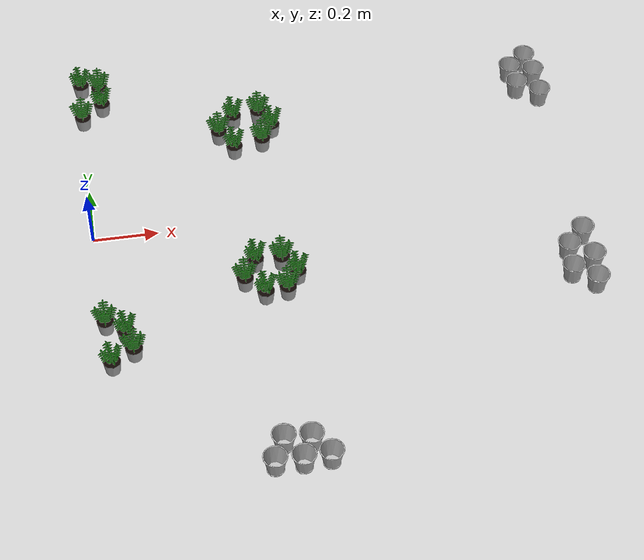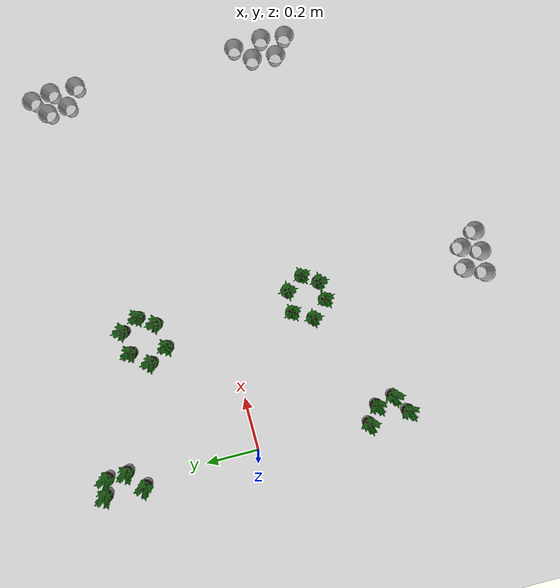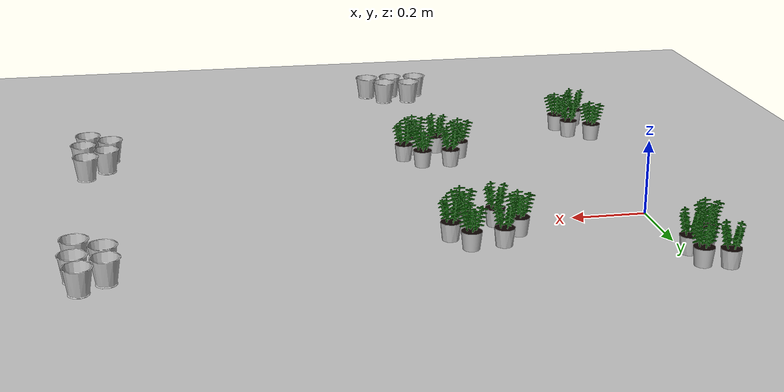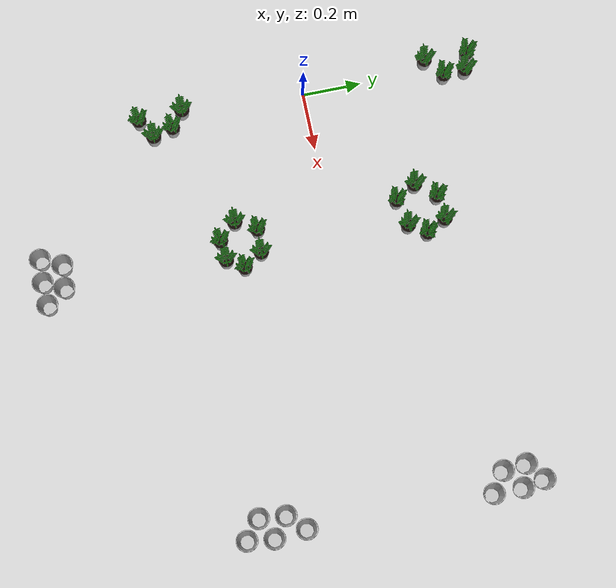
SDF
<sdf version="1.10">
 <world name="empty">
  <model name="ground_plane">
   <static>true</static>
   <link name="link">
    <collision name="collision">
     <geometry><plane><normal>0 0 1</normal><size>100 100</size></plane></geometry>
    </collision>
    <visual name="visual">
     <geometry><plane><normal>0 0 1</normal><size>100 100</size></plane></geometry>
     <material>
      <ambient>0.800000012 0.800000012 0.800000012 1</ambient>
      <diffuse>0.800000012 0.800000012 0.800000012 1</diffuse>
      <specular>0.800000012 0.800000012 0.800000012 1</specular>
     </material>
    </visual>
    <inertial>
     <mass>1</mass>
     <inertia><ixx>1</ixx><ixy>0</ixy><ixz>0</ixz><iyy>1</iyy><iyz>0</iyz><izz>1</izz></inertia>
    </inertial>
   </link>
  </model>
  <model name="pot_15">
   <link name="link">
    <pose>0 0 0.10000000000000001 0 0 0</pose>
    <collision name="collision">
     <geometry>
      <mesh>
       <uri>file:///home/arusso/dev/coupe/ws_0/install/champi_simulator/share/champi_simulator/models/pot/meshes/model.dae</uri>
      </mesh>
     </geometry>
    </collision>
    <visual name="visual">
     <geometry>
      <mesh>
       <uri>file:///home/arusso/dev/coupe/ws_0/install/champi_simulator/share/champi_simulator/models/pot/meshes/model.dae</uri>
      </mesh>
     </geometry>
    </visual>
    <inertial>
     <mass>1</mass>
     <inertia><ixx>1</ixx><ixy>0</ixy><ixz>0</ixz><iyy>1</iyy><iyz>0</iyz><izz>1</izz></inertia>
    </inertial>
   </link>
   <pose>1.4501900000000001 0.46426099999999998 -0.019989 -0.00069220900000000005 0.00014280300000000005 -4.0547600000000025e-08</pose>
   <static>false</static>
  </model>
  <model name="pot_16">
   <link name="link">
    <pose>0 0 0.10000000000000001 0 0 0</pose>
    <collision name="collision">
     <geometry>
      <mesh>
       <uri>file:///home/arusso/dev/coupe/ws_0/install/champi_simulator/share/champi_simulator/models/pot/meshes/model.dae</uri>
      </mesh>
     </geometry>
    </collision>
    <visual name="visual">
     <geometry>
      <mesh>
       <uri>file:///home/arusso/dev/coupe/ws_0/install/champi_simulator/share/champi_simulator/models/pot/meshes/model.dae</uri>
      </mesh>
     </geometry>
    </visual>
    <inertial>
     <mass>1</mass>
     <inertia><ixx>1</ixx><ixy>0</ixy><ixz>0</ixz><iyy>1</iyy><iyz>0</iyz><izz>1</izz></inertia>
    </inertial>
   </link>
   <pose>1.4631799999999999 0.39277099999999998 -0.0199889 -0.00069345600000000017 0.00014240400000000011 0.0018851600000000001</pose>
   <static>false</static>
  </model>
  <model name="pot_17">
   <link name="link">
    <pose>0 0 0.10000000000000001 0 0 0</pose>
    <collision name="collision">
     <geometry>
      <mesh>
       <uri>file:///home/arusso/dev/coupe/ws_0/install/champi_simulator/share/champi_simulator/models/pot/meshes/model.dae</uri>
      </mesh>
     </geometry>
    </collision>
    <visual name="visual">
     <geometry>
      <mesh>
       <uri>file:///home/arusso/dev/coupe/ws_0/install/champi_simulator/share/champi_simulator/models/pot/meshes/model.dae</uri>
      </mesh>
     </geometry>
    </visual>
    <inertial>
     <mass>1</mass>
     <inertia><ixx>1</ixx><ixy>0</ixy><ixz>0</ixz><iyy>1</iyy><iyz>0</iyz><izz>1</izz></inertia>
    </inertial>
   </link>
   <pose>1.4628300000000001 0.299319 -0.019989 -0.00069220900000000005 0.00014280300000000005 -4.0547600000000025e-08</pose>
   <static>false</static>
  </model>
  <model name="pot_18">
   <link name="link">
    <pose>0 0 0.10000000000000001 0 0 0</pose>
    <collision name="collision">
     <geometry>
      <mesh>
       <uri>file:///home/arusso/dev/coupe/ws_0/install/champi_simulator/share/champi_simulator/models/pot/meshes/model.dae</uri>
      </mesh>
     </geometry>
    </collision>
    <visual name="visual">
     <geometry>
      <mesh>
       <uri>file:///home/arusso/dev/coupe/ws_0/install/champi_simulator/share/champi_simulator/models/pot/meshes/model.dae</uri>
      </mesh>
     </geometry>
    </visual>
    <inertial>
     <mass>1</mass>
     <inertia><ixx>1</ixx><ixy>0</ixy><ixz>0</ixz><iyy>1</iyy><iyz>0</iyz><izz>1</izz></inertia>
    </inertial>
   </link>
   <pose>1.3919299999999999 0.41950300000000001 -0.019989 -0.00069220900000000005 0.00014280300000000005 -4.0547600000000025e-08</pose>
   <static>false</static>
  </model>
  <model name="pot_19">
   <link name="link">
    <pose>0 0 0.10000000000000001 0 0 0</pose>
    <collision name="collision">
     <geometry>
      <mesh>
       <uri>file:///home/arusso/dev/coupe/ws_0/install/champi_simulator/share/champi_simulator/models/pot/meshes/model.dae</uri>
      </mesh>
     </geometry>
    </collision>
    <visual name="visual">
     <geometry>
      <mesh>
       <uri>file:///home/arusso/dev/coupe/ws_0/install/champi_simulator/share/champi_simulator/models/pot/meshes/model.dae</uri>
      </mesh>
     </geometry>
    </visual>
    <inertial>
     <mass>1</mass>
     <inertia><ixx>1</ixx><ixy>0</ixy><ixz>0</ixz><iyy>1</iyy><iyz>0</iyz><izz>1</izz></inertia>
    </inertial>
   </link>
   <pose>1.3986799999999999 0.34415899999999999 -0.019989 -0.00069220900000000005 0.00014280300000000005 -4.0547600000000025e-08</pose>
   <static>false</static>
  </model>
  <model name="pot_20">
   <link name="link">
    <pose>0 0 0.10000000000000001 0 0 0</pose>
    <collision name="collision">
     <geometry>
      <mesh>
       <uri>file:///home/arusso/dev/coupe/ws_0/install/champi_simulator/share/champi_simulator/models/pot/meshes/model.dae</uri>
      </mesh>
     </geometry>
    </collision>
    <visual name="visual">
     <geometry>
      <mesh>
       <uri>file:///home/arusso/dev/coupe/ws_0/install/champi_simulator/share/champi_simulator/models/pot/meshes/model.dae</uri>
      </mesh>
     </geometry>
    </visual>
    <inertial>
     <mass>1</mass>
     <inertia><ixx>1</ixx><ixy>0</ixy><ixz>0</ixz><iyy>1</iyy><iyz>0</iyz><izz>1</izz></inertia>
    </inertial>
   </link>
   <pose>0.58666300000000005 -0.96050400000000002 -0.019989 -0.00069220900000000005 0.00014280300000000005 -4.0547600000000025e-08</pose>
   <static>false</static>
  </model>
  <model name="pot_21">
   <link name="link">
    <pose>0 0 0.10000000000000001 0 0 0</pose>
    <collision name="collision">
     <geometry>
      <mesh>
       <uri>file:///home/arusso/dev/coupe/ws_0/install/champi_simulator/share/champi_simulator/models/pot/meshes/model.dae</uri>
      </mesh>
     </geometry>
    </collision>
    <visual name="visual">
     <geometry>
      <mesh>
       <uri>file:///home/arusso/dev/coupe/ws_0/install/champi_simulator/share/champi_simulator/models/pot/meshes/model.dae</uri>
      </mesh>
     </geometry>
    </visual>
    <inertial>
     <mass>1</mass>
     <inertia><ixx>1</ixx><ixy>0</ixy><ixz>0</ixz><iyy>1</iyy><iyz>0</iyz><izz>1</izz></inertia>
    </inertial>
   </link>
   <pose>0.51073000000000002 -0.96303499999999997 -0.0199889 -0.00069275300000000005 0.00014289600000000005 -3.8064700000000008e-06</pose>
   <static>false</static>
  </model>
  <model name="pot_22">
   <link name="link">
    <pose>0 0 0.10000000000000001 0 0 0</pose>
    <collision name="collision">
     <geometry>
      <mesh>
       <uri>file:///home/arusso/dev/coupe/ws_0/install/champi_simulator/share/champi_simulator/models/pot/meshes/model.dae</uri>
      </mesh>
     </geometry>
    </collision>
    <visual name="visual">
     <geometry>
      <mesh>
       <uri>file:///home/arusso/dev/coupe/ws_0/install/champi_simulator/share/champi_simulator/models/pot/meshes/model.dae</uri>
      </mesh>
     </geometry>
    </visual>
    <inertial>
     <mass>1</mass>
     <inertia><ixx>1</ixx><ixy>0</ixy><ixz>0</ixz><iyy>1</iyy><iyz>0</iyz><izz>1</izz></inertia>
    </inertial>
   </link>
   <pose>0.43281500000000001 -0.95924200000000004 -0.019989 -0.00069220900000000005 0.00014280300000000005 -4.0547600000000025e-08</pose>
   <static>false</static>
  </model>
  <model name="pot_23">
   <link name="link">
    <pose>0 0 0.10000000000000001 0 0 0</pose>
    <collision name="collision">
     <geometry>
      <mesh>
       <uri>file:///home/arusso/dev/coupe/ws_0/install/champi_simulator/share/champi_simulator/models/pot/meshes/model.dae</uri>
      </mesh>
     </geometry>
    </collision>
    <visual name="visual">
     <geometry>
      <mesh>
       <uri>file:///home/arusso/dev/coupe/ws_0/install/champi_simulator/share/champi_simulator/models/pot/meshes/model.dae</uri>
      </mesh>
     </geometry>
    </visual>
    <inertial>
     <mass>1</mass>
     <inertia><ixx>1</ixx><ixy>0</ixy><ixz>0</ixz><iyy>1</iyy><iyz>0</iyz><izz>1</izz></inertia>
    </inertial>
   </link>
   <pose>0.54138699999999995 -0.89774799999999999 -0.019989 -0.00069220900000000005 0.00014280300000000005 -4.0547600000000025e-08</pose>
   <static>false</static>
  </model>
  <model name="pot_24">
   <link name="link">
    <pose>0 0 0.10000000000000001 0 0 0</pose>
    <collision name="collision">
     <geometry>
      <mesh>
       <uri>file:///home/arusso/dev/coupe/ws_0/install/champi_simulator/share/champi_simulator/models/pot/meshes/model.dae</uri>
      </mesh>
     </geometry>
    </collision>
    <visual name="visual">
     <geometry>
      <mesh>
       <uri>file:///home/arusso/dev/coupe/ws_0/install/champi_simulator/share/champi_simulator/models/pot/meshes/model.dae</uri>
      </mesh>
     </geometry>
    </visual>
    <inertial>
     <mass>1</mass>
     <inertia><ixx>1</ixx><ixy>0</ixy><ixz>0</ixz><iyy>1</iyy><iyz>0</iyz><izz>1</izz></inertia>
    </inertial>
   </link>
   <pose>0.46546399999999999 -0.89145600000000003 -0.019989 -0.00069220900000000005 0.00014280300000000005 -4.0547600000000025e-08</pose>
   <static>false</static>
  </model>
  <model name="pot_29">
   <link name="link">
    <pose>0 0 0.10000000000000001 0 0 0</pose>
    <collision name="collision">
     <geometry>
      <mesh>
       <uri>file:///home/arusso/dev/coupe/ws_0/install/champi_simulator/share/champi_simulator/models/pot/meshes/model.dae</uri>
      </mesh>
     </geometry>
    </collision>
    <visual name="visual">
     <geometry>
      <mesh>
       <uri>file:///home/arusso/dev/coupe/ws_0/install/champi_simulator/share/champi_simulator/models/pot/meshes/model.dae</uri>
      </mesh>
     </geometry>
    </visual>
    <inertial>
     <mass>1</mass>
     <inertia><ixx>1</ixx><ixy>0</ixy><ixz>0</ixz><iyy>1</iyy><iyz>0</iyz><izz>1</izz></inertia>
    </inertial>
   </link>
   <pose>1.4604999999999999 -0.39635399999999998 -0.019989 -0.00069220900000000005 0.00014280300000000005 -4.0547600000000025e-08</pose>
   <static>false</static>
  </model>
  <model name="pot_30">
   <link name="link">
    <pose>0 0 0.10000000000000001 0 0 0</pose>
    <collision name="collision">
     <geometry>
      <mesh>
       <uri>file:///home/arusso/dev/coupe/ws_0/install/champi_simulator/share/champi_simulator/models/pot/meshes/model.dae</uri>
      </mesh>
     </geometry>
    </collision>
    <visual name="visual">
     <geometry>
      <mesh>
       <uri>file:///home/arusso/dev/coupe/ws_0/install/champi_simulator/share/champi_simulator/models/pot/meshes/model.dae</uri>
      </mesh>
     </geometry>
    </visual>
    <inertial>
     <mass>1</mass>
     <inertia><ixx>1</ixx><ixy>0</ixy><ixz>0</ixz><iyy>1</iyy><iyz>0</iyz><izz>1</izz></inertia>
    </inertial>
   </link>
   <pose>1.4497 -0.48125200000000001 -0.019989 -0.00069220900000000005 0.00014280300000000005 -4.0547600000000025e-08</pose>
   <static>false</static>
  </model>
  <model name="pot_31">
   <link name="link">
    <pose>0 0 0.10000000000000001 0 0 0</pose>
    <collision name="collision">
     <geometry>
      <mesh>
       <uri>file:///home/arusso/dev/coupe/ws_0/install/champi_simulator/share/champi_simulator/models/pot/meshes/model.dae</uri>
      </mesh>
     </geometry>
    </collision>
    <visual name="visual">
     <geometry>
      <mesh>
       <uri>file:///home/arusso/dev/coupe/ws_0/install/champi_simulator/share/champi_simulator/models/pot/meshes/model.dae</uri>
      </mesh>
     </geometry>
    </visual>
    <inertial>
     <mass>1</mass>
     <inertia><ixx>1</ixx><ixy>0</ixy><ixz>0</ixz><iyy>1</iyy><iyz>0</iyz><izz>1</izz></inertia>
    </inertial>
   </link>
   <pose>1.3979200000000001 -0.347551 -0.0199889 -0.00069334400000000003 0.00014329600000000006 -0.049522400000000015</pose>
   <static>false</static>
  </model>
  <model name="pot_32">
   <link name="link">
    <pose>0 0 0.10000000000000001 0 0 0</pose>
    <collision name="collision">
     <geometry>
      <mesh>
       <uri>file:///home/arusso/dev/coupe/ws_0/install/champi_simulator/share/champi_simulator/models/pot/meshes/model.dae</uri>
      </mesh>
     </geometry>
    </collision>
    <visual name="visual">
     <geometry>
      <mesh>
       <uri>file:///home/arusso/dev/coupe/ws_0/install/champi_simulator/share/champi_simulator/models/pot/meshes/model.dae</uri>
      </mesh>
     </geometry>
    </visual>
    <inertial>
     <mass>1</mass>
     <inertia><ixx>1</ixx><ixy>0</ixy><ixz>0</ixz><iyy>1</iyy><iyz>0</iyz><izz>1</izz></inertia>
    </inertial>
   </link>
   <pose>1.3893899999999999 -0.43281500000000001 -0.019989 -0.00069220900000000005 0.00014280300000000005 -4.0547600000000025e-08</pose>
   <static>false</static>
  </model>
  <model name="pot_4">
   <link name="link">
    <pose>0 0 0.10000000000000001 0 0 0</pose>
    <collision name="collision">
     <geometry>
      <mesh>
       <uri>file:///home/arusso/dev/coupe/ws_0/install/champi_simulator/share/champi_simulator/models/pot/meshes/model.dae</uri>
      </mesh>
     </geometry>
    </collision>
    <visual name="visual">
     <geometry>
      <mesh>
       <uri>file:///home/arusso/dev/coupe/ws_0/install/champi_simulator/share/champi_simulator/models/pot/meshes/model.dae</uri>
      </mesh>
     </geometry>
    </visual>
    <inertial>
     <mass>1</mass>
     <inertia><ixx>1</ixx><ixy>0</ixy><ixz>0</ixz><iyy>1</iyy><iyz>0</iyz><izz>1</izz></inertia>
    </inertial>
   </link>
   <pose>1.4515499999999999 -0.29249799999999998 -0.019989 -0.00069220900000000005 0.00014280300000000005 -4.0547600000000025e-08</pose>
   <static>false</static>
  </model>
  <model name="plante_resistante">
   <link name="link">
    <pose>0 0 0.10000000000000001 0 0 0</pose>
    <collision name="collision">
     <geometry>
      <mesh>
       <uri>file:///home/arusso/dev/coupe/ws_0/install/champi_simulator/share/champi_simulator/models/plante_resistante/meshes/model.dae</uri>
      </mesh>
     </geometry>
    </collision>
    <visual name="visual">
     <geometry>
      <mesh>
       <uri>file:///home/arusso/dev/coupe/ws_0/install/champi_simulator/share/champi_simulator/models/plante_resistante/meshes/model.dae</uri>
      </mesh>
     </geometry>
    </visual>
    <inertial>
     <mass>1</mass>
     <inertia><ixx>1</ixx><ixy>0</ixy><ixz>0</ixz><iyy>1</iyy><iyz>0</iyz><izz>1</izz></inertia>
    </inertial>
   </link>
   <pose>0.58933000000000002 -0.31569799999999998 -0.019975900000000001 3.8603699999999984e-05 -0.0020328400000000002 -1.2490100000000001e-06</pose>
   <static>false</static>
  </model>
  <model name="plante_resistante_0">
   <link name="link">
    <pose>0 0 0.10000000000000001 0 0 0</pose>
    <collision name="collision">
     <geometry>
      <mesh>
       <uri>file:///home/arusso/dev/coupe/ws_0/install/champi_simulator/share/champi_simulator/models/plante_resistante/meshes/model.dae</uri>
      </mesh>
     </geometry>
    </collision>
    <visual name="visual">
     <geometry>
      <mesh>
       <uri>file:///home/arusso/dev/coupe/ws_0/install/champi_simulator/share/champi_simulator/models/plante_resistante/meshes/model.dae</uri>
      </mesh>
     </geometry>
    </visual>
    <inertial>
     <mass>1</mass>
     <inertia><ixx>1</ixx><ixy>0</ixy><ixz>0</ixz><iyy>1</iyy><iyz>0</iyz><izz>1</izz></inertia>
    </inertial>
   </link>
   <pose>0.486674 -0.37622499999999998 -0.019975900000000001 3.8603699999999984e-05 -0.0020328400000000002 -1.2490100000000001e-06</pose>
   <static>false</static>
  </model>
  <model name="plante_resistante_1">
   <link name="link">
    <pose>0 0 0.10000000000000001 0 0 0</pose>
    <collision name="collision">
     <geometry>
      <mesh>
       <uri>file:///home/arusso/dev/coupe/ws_0/install/champi_simulator/share/champi_simulator/models/plante_resistante/meshes/model.dae</uri>
      </mesh>
     </geometry>
    </collision>
    <visual name="visual">
     <geometry>
      <mesh>
       <uri>file:///home/arusso/dev/coupe/ws_0/install/champi_simulator/share/champi_simulator/models/plante_resistante/meshes/model.dae</uri>
      </mesh>
     </geometry>
    </visual>
    <inertial>
     <mass>1</mass>
     <inertia><ixx>1</ixx><ixy>0</ixy><ixz>0</ixz><iyy>1</iyy><iyz>0</iyz><izz>1</izz></inertia>
    </inertial>
   </link>
   <pose>0.47190300000000002 -0.25067699999999998 -0.019975900000000001 3.8603699999999984e-05 -0.0020328400000000002 -1.2490100000000001e-06</pose>
   <static>false</static>
  </model>
  <model name="plante_fragile">
   <link name="link">
    <pose>0 0 0.10000000000000001 0 0 0</pose>
    <collision name="collision">
     <geometry>
      <mesh>
       <uri>file:///home/arusso/dev/coupe/ws_0/install/champi_simulator/share/champi_simulator/models/plante_fragile/meshes/model.dae</uri>
      </mesh>
     </geometry>
    </collision>
    <visual name="visual">
     <geometry>
      <mesh>
       <uri>file:///home/arusso/dev/coupe/ws_0/install/champi_simulator/share/champi_simulator/models/plante_fragile/meshes/model.dae</uri>
      </mesh>
     </geometry>
    </visual>
    <inertial>
     <mass>1</mass>
     <inertia><ixx>1</ixx><ixy>0</ixy><ixz>0</ixz><iyy>1</iyy><iyz>0</iyz><izz>1</izz></inertia>
    </inertial>
   </link>
   <pose>0.55256899999999998 -0.36994500000000002 -0.019975900000000001 3.8603699999999984e-05 -0.0020328400000000002 -1.2490100000000001e-06</pose>
   <static>false</static>
  </model>
  <model name="plante_fragile_0">
   <link name="link">
    <pose>0 0 0.10000000000000001 0 0 0</pose>
    <collision name="collision">
     <geometry>
      <mesh>
       <uri>file:///home/arusso/dev/coupe/ws_0/install/champi_simulator/share/champi_simulator/models/plante_fragile/meshes/model.dae</uri>
      </mesh>
     </geometry>
    </collision>
    <visual name="visual">
     <geometry>
      <mesh>
       <uri>file:///home/arusso/dev/coupe/ws_0/install/champi_simulator/share/champi_simulator/models/plante_fragile/meshes/model.dae</uri>
      </mesh>
     </geometry>
    </visual>
    <inertial>
     <mass>1</mass>
     <inertia><ixx>1</ixx><ixy>0</ixy><ixz>0</ixz><iyy>1</iyy><iyz>0</iyz><izz>1</izz></inertia>
    </inertial>
   </link>
   <pose>0.54969800000000002 -0.25431500000000001 -0.019975900000000001 3.8603699999999984e-05 -0.0020328400000000002 -1.2490100000000001e-06</pose>
   <static>false</static>
  </model>
  <model name="plante_fragile_1">
   <link name="link">
    <pose>0 0 0.10000000000000001 0 0 0</pose>
    <collision name="collision">
     <geometry>
      <mesh>
       <uri>file:///home/arusso/dev/coupe/ws_0/install/champi_simulator/share/champi_simulator/models/plante_fragile/meshes/model.dae</uri>
      </mesh>
     </geometry>
    </collision>
    <visual name="visual">
     <geometry>
      <mesh>
       <uri>file:///home/arusso/dev/coupe/ws_0/install/champi_simulator/share/champi_simulator/models/plante_fragile/meshes/model.dae</uri>
      </mesh>
     </geometry>
    </visual>
    <inertial>
     <mass>1</mass>
     <inertia><ixx>1</ixx><ixy>0</ixy><ixz>0</ixz><iyy>1</iyy><iyz>0</iyz><izz>1</izz></inertia>
    </inertial>
   </link>
   <pose>0.43286200000000002 -0.31884899999999999 -0.019975900000000001 3.8603699999999984e-05 -0.0020328400000000002 -1.2490100000000001e-06</pose>
   <static>false</static>
  </model>
  <model name="plante_fragile_2">
   <link name="link">
    <pose>0 0 0.10000000000000001 0 0 0</pose>
    <collision name="collision">
     <geometry>
      <mesh>
       <uri>file:///home/arusso/dev/coupe/ws_0/install/champi_simulator/share/champi_simulator/models/plante_fragile/meshes/model.dae</uri>
      </mesh>
     </geometry>
    </collision>
    <visual name="visual">
     <geometry>
      <mesh>
       <uri>file:///home/arusso/dev/coupe/ws_0/install/champi_simulator/share/champi_simulator/models/plante_fragile/meshes/model.dae</uri>
      </mesh>
     </geometry>
    </visual>
    <inertial>
     <mass>1</mass>
     <inertia><ixx>1</ixx><ixy>0</ixy><ixz>0</ixz><iyy>1</iyy><iyz>0</iyz><izz>1</izz></inertia>
    </inertial>
   </link>
   <pose>0.090500800000000006 -0.523725 -0.019975900000000001 3.94547e-05 -0.0020343000000000002 -0.00019524700000000012</pose>
   <static>false</static>
  </model>
  <model name="plante_fragile_3">
   <link name="link">
    <pose>0 0 0.10000000000000001 0 0 0</pose>
    <collision name="collision">
     <geometry>
      <mesh>
       <uri>file:///home/arusso/dev/coupe/ws_0/install/champi_simulator/share/champi_simulator/models/plante_fragile/meshes/model.dae</uri>
      </mesh>
     </geometry>
    </collision>
    <visual name="visual">
     <geometry>
      <mesh>
       <uri>file:///home/arusso/dev/coupe/ws_0/install/champi_simulator/share/champi_simulator/models/plante_fragile/meshes/model.dae</uri>
      </mesh>
     </geometry>
    </visual>
    <inertial>
     <mass>1</mass>
     <inertia><ixx>1</ixx><ixy>0</ixy><ixz>0</ixz><iyy>1</iyy><iyz>0</iyz><izz>1</izz></inertia>
    </inertial>
   </link>
   <pose>0.0177853 -0.41555300000000001 -0.019975900000000001 3.8603699999999984e-05 -0.0020328400000000002 -1.2490100000000001e-06</pose>
   <static>false</static>
  </model>
  <model name="plante_resistante_3">
   <link name="link">
    <pose>0 0 0.10000000000000001 0 0 0</pose>
    <collision name="collision">
     <geometry>
      <mesh>
       <uri>file:///home/arusso/dev/coupe/ws_0/install/champi_simulator/share/champi_simulator/models/plante_resistante/meshes/model.dae</uri>
      </mesh>
     </geometry>
    </collision>
    <visual name="visual">
     <geometry>
      <mesh>
       <uri>file:///home/arusso/dev/coupe/ws_0/install/champi_simulator/share/champi_simulator/models/plante_resistante/meshes/model.dae</uri>
      </mesh>
     </geometry>
    </visual>
    <inertial>
     <mass>1</mass>
     <inertia><ixx>1</ixx><ixy>0</ixy><ixz>0</ixz><iyy>1</iyy><iyz>0</iyz><izz>1</izz></inertia>
    </inertial>
   </link>
   <pose>0.025788999999999999 -0.56185200000000002 -0.019975900000000001 3.8603699999999984e-05 -0.0020328400000000002 -1.2490100000000001e-06</pose>
   <static>false</static>
  </model>
  <model name="plante_resistante_2">
   <link name="link">
    <pose>0 0 0.10000000000000001 0 0 0</pose>
    <collision name="collision">
     <geometry>
      <mesh>
       <uri>file:///home/arusso/dev/coupe/ws_0/install/champi_simulator/share/champi_simulator/models/plante_resistante/meshes/model.dae</uri>
      </mesh>
     </geometry>
    </collision>
    <visual name="visual">
     <geometry>
      <mesh>
       <uri>file:///home/arusso/dev/coupe/ws_0/install/champi_simulator/share/champi_simulator/models/plante_resistante/meshes/model.dae</uri>
      </mesh>
     </geometry>
    </visual>
    <inertial>
     <mass>1</mass>
     <inertia><ixx>1</ixx><ixy>0</ixy><ixz>0</ixz><iyy>1</iyy><iyz>0</iyz><izz>1</izz></inertia>
    </inertial>
   </link>
   <pose>0.072926199999999997 -0.45725500000000002 -0.019975900000000001 3.8603699999999984e-05 -0.0020328400000000002 -1.2490100000000001e-06</pose>
   <static>false</static>
  </model>
  <model name="plante_fragile_11">
   <link name="link">
    <pose>0 0 0.10000000000000001 0 0 0</pose>
    <collision name="collision">
     <geometry>
      <mesh>
       <uri>file:///home/arusso/dev/coupe/ws_0/install/champi_simulator/share/champi_simulator/models/plante_fragile/meshes/model.dae</uri>
      </mesh>
     </geometry>
    </collision>
    <visual name="visual">
     <geometry>
      <mesh>
       <uri>file:///home/arusso/dev/coupe/ws_0/install/champi_simulator/share/champi_simulator/models/plante_fragile/meshes/model.dae</uri>
      </mesh>
     </geometry>
    </visual>
    <inertial>
     <mass>1</mass>
     <inertia><ixx>1</ixx><ixy>0</ixy><ixz>0</ixz><iyy>1</iyy><iyz>0</iyz><izz>1</izz></inertia>
    </inertial>
   </link>
   <pose>0.0072599300000000004 0.41313 -0.019975900000000001 3.8603699999999984e-05 -0.0020328400000000002 -1.2490100000000001e-06</pose>
   <static>false</static>
  </model>
  <model name="plante_fragile_12">
   <link name="link">
    <pose>0 0 0.10000000000000001 0 0 0</pose>
    <collision name="collision">
     <geometry>
      <mesh>
       <uri>file:///home/arusso/dev/coupe/ws_0/install/champi_simulator/share/champi_simulator/models/plante_fragile/meshes/model.dae</uri>
      </mesh>
     </geometry>
    </collision>
    <visual name="visual">
     <geometry>
      <mesh>
       <uri>file:///home/arusso/dev/coupe/ws_0/install/champi_simulator/share/champi_simulator/models/plante_fragile/meshes/model.dae</uri>
      </mesh>
     </geometry>
    </visual>
    <inertial>
     <mass>1</mass>
     <inertia><ixx>1</ixx><ixy>0</ixy><ixz>0</ixz><iyy>1</iyy><iyz>0</iyz><izz>1</izz></inertia>
    </inertial>
   </link>
   <pose>0.067348099999999994 0.538636 -0.019975900000000001 3.8603699999999984e-05 -0.0020328400000000002 -1.2490100000000001e-06</pose>
   <static>false</static>
  </model>
  <model name="plante_resistante_11">
   <link name="link">
    <pose>0 0 0.10000000000000001 0 0 0</pose>
    <collision name="collision">
     <geometry>
      <mesh>
       <uri>file:///home/arusso/dev/coupe/ws_0/install/champi_simulator/share/champi_simulator/models/plante_resistante/meshes/model.dae</uri>
      </mesh>
     </geometry>
    </collision>
    <visual name="visual">
     <geometry>
      <mesh>
       <uri>file:///home/arusso/dev/coupe/ws_0/install/champi_simulator/share/champi_simulator/models/plante_resistante/meshes/model.dae</uri>
      </mesh>
     </geometry>
    </visual>
    <inertial>
     <mass>1</mass>
     <inertia><ixx>1</ixx><ixy>0</ixy><ixz>0</ixz><iyy>1</iyy><iyz>0</iyz><izz>1</izz></inertia>
    </inertial>
   </link>
   <pose>0.071070499999999995 0.46464800000000001 -0.019975900000000001 3.8603699999999984e-05 -0.0020328400000000002 -1.2490100000000001e-06</pose>
   <static>false</static>
  </model>
  <model name="plante_resistante_13">
   <link name="link">
    <pose>0 0 0.10000000000000001 0 0 0</pose>
    <collision name="collision">
     <geometry>
      <mesh>
       <uri>file:///home/arusso/dev/coupe/ws_0/install/champi_simulator/share/champi_simulator/models/plante_resistante/meshes/model.dae</uri>
      </mesh>
     </geometry>
    </collision>
    <visual name="visual">
     <geometry>
      <mesh>
       <uri>file:///home/arusso/dev/coupe/ws_0/install/champi_simulator/share/champi_simulator/models/plante_resistante/meshes/model.dae</uri>
      </mesh>
     </geometry>
    </visual>
    <inertial>
     <mass>1</mass>
     <inertia><ixx>1</ixx><ixy>0</ixy><ixz>0</ixz><iyy>1</iyy><iyz>0</iyz><izz>1</izz></inertia>
    </inertial>
   </link>
   <pose>0.0103967 0.55745 -0.019975900000000001 3.8603699999999984e-05 -0.0020328400000000002 -1.2490100000000001e-06</pose>
   <static>false</static>
  </model>
  <model name="plante_resistante_14">
   <link name="link">
    <pose>0 0 0.10000000000000001 0 0 0</pose>
    <collision name="collision">
     <geometry>
      <mesh>
       <uri>file:///home/arusso/dev/coupe/ws_0/install/champi_simulator/share/champi_simulator/models/plante_resistante/meshes/model.dae</uri>
      </mesh>
     </geometry>
    </collision>
    <visual name="visual">
     <geometry>
      <mesh>
       <uri>file:///home/arusso/dev/coupe/ws_0/install/champi_simulator/share/champi_simulator/models/plante_resistante/meshes/model.dae</uri>
      </mesh>
     </geometry>
    </visual>
    <inertial>
     <mass>1</mass>
     <inertia><ixx>1</ixx><ixy>0</ixy><ixz>0</ixz><iyy>1</iyy><iyz>0</iyz><izz>1</izz></inertia>
    </inertial>
   </link>
   <pose>0.59421400000000002 0.28996300000000003 -0.019975900000000001 3.8603699999999984e-05 -0.0020328400000000002 -1.2490100000000001e-06</pose>
   <static>false</static>
  </model>
  <model name="plante_resistante_15">
   <link name="link">
    <pose>0 0 0.10000000000000001 0 0 0</pose>
    <collision name="collision">
     <geometry>
      <mesh>
       <uri>file:///home/arusso/dev/coupe/ws_0/install/champi_simulator/share/champi_simulator/models/plante_resistante/meshes/model.dae</uri>
      </mesh>
     </geometry>
    </collision>
    <visual name="visual">
     <geometry>
      <mesh>
       <uri>file:///home/arusso/dev/coupe/ws_0/install/champi_simulator/share/champi_simulator/models/plante_resistante/meshes/model.dae</uri>
      </mesh>
     </geometry>
    </visual>
    <inertial>
     <mass>1</mass>
     <inertia><ixx>1</ixx><ixy>0</ixy><ixz>0</ixz><iyy>1</iyy><iyz>0</iyz><izz>1</izz></inertia>
    </inertial>
   </link>
   <pose>0.467003 0.21493499999999999 -0.019975900000000001 3.8603699999999984e-05 -0.0020328400000000002 -1.2490100000000001e-06</pose>
   <static>false</static>
  </model>
  <model name="plante_resistante_16">
   <link name="link">
    <pose>0 0 0.10000000000000001 0 0 0</pose>
    <collision name="collision">
     <geometry>
      <mesh>
       <uri>file:///home/arusso/dev/coupe/ws_0/install/champi_simulator/share/champi_simulator/models/plante_resistante/meshes/model.dae</uri>
      </mesh>
     </geometry>
    </collision>
    <visual name="visual">
     <geometry>
      <mesh>
       <uri>file:///home/arusso/dev/coupe/ws_0/install/champi_simulator/share/champi_simulator/models/plante_resistante/meshes/model.dae</uri>
      </mesh>
     </geometry>
    </visual>
    <inertial>
     <mass>1</mass>
     <inertia><ixx>1</ixx><ixy>0</ixy><ixz>0</ixz><iyy>1</iyy><iyz>0</iyz><izz>1</izz></inertia>
    </inertial>
   </link>
   <pose>0.47833300000000001 0.347217 -0.019975900000000001 3.8603699999999984e-05 -0.0020328400000000002 -1.2490100000000001e-06</pose>
   <static>false</static>
  </model>
  <model name="plante_fragile_14">
   <link name="link">
    <pose>0 0 0.10000000000000001 0 0 0</pose>
    <collision name="collision">
     <geometry>
      <mesh>
       <uri>file:///home/arusso/dev/coupe/ws_0/install/champi_simulator/share/champi_simulator/models/plante_fragile/meshes/model.dae</uri>
      </mesh>
     </geometry>
    </collision>
    <visual name="visual">
     <geometry>
      <mesh>
       <uri>file:///home/arusso/dev/coupe/ws_0/install/champi_simulator/share/champi_simulator/models/plante_fragile/meshes/model.dae</uri>
      </mesh>
     </geometry>
    </visual>
    <inertial>
     <mass>1</mass>
     <inertia><ixx>1</ixx><ixy>0</ixy><ixz>0</ixz><iyy>1</iyy><iyz>0</iyz><izz>1</izz></inertia>
    </inertial>
   </link>
   <pose>0.55653699999999995 0.233793 -0.019975900000000001 3.8603699999999984e-05 -0.0020328400000000002 -1.2490100000000001e-06</pose>
   <static>false</static>
  </model>
  <model name="plante_fragile_15">
   <link name="link">
    <pose>0 0 0.10000000000000001 0 0 0</pose>
    <collision name="collision">
     <geometry>
      <mesh>
       <uri>file:///home/arusso/dev/coupe/ws_0/install/champi_simulator/share/champi_simulator/models/plante_fragile/meshes/model.dae</uri>
      </mesh>
     </geometry>
    </collision>
    <visual name="visual">
     <geometry>
      <mesh>
       <uri>file:///home/arusso/dev/coupe/ws_0/install/champi_simulator/share/champi_simulator/models/plante_fragile/meshes/model.dae</uri>
      </mesh>
     </geometry>
    </visual>
    <inertial>
     <mass>1</mass>
     <inertia><ixx>1</ixx><ixy>0</ixy><ixz>0</ixz><iyy>1</iyy><iyz>0</iyz><izz>1</izz></inertia>
    </inertial>
   </link>
   <pose>0.55945 0.35527199999999998 -0.019975900000000001 3.8603600000000025e-05 -0.0020328400000000019 -1.2490700000000009e-06</pose>
   <static>false</static>
  </model>
  <model name="plante_fragile_16">
   <link name="link">
    <pose>0 0 0.10000000000000001 0 0 0</pose>
    <collision name="collision">
     <geometry>
      <mesh>
       <uri>file:///home/arusso/dev/coupe/ws_0/install/champi_simulator/share/champi_simulator/models/plante_fragile/meshes/model.dae</uri>
      </mesh>
     </geometry>
    </collision>
    <visual name="visual">
     <geometry>
      <mesh>
       <uri>file:///home/arusso/dev/coupe/ws_0/install/champi_simulator/share/champi_simulator/models/plante_fragile/meshes/model.dae</uri>
      </mesh>
     </geometry>
    </visual>
    <inertial>
     <mass>1</mass>
     <inertia><ixx>1</ixx><ixy>0</ixy><ixz>0</ixz><iyy>1</iyy><iyz>0</iyz><izz>1</izz></inertia>
    </inertial>
   </link>
   <pose>0.42595 0.284105 -0.019975900000000001 3.8604700000000013e-05 -0.0020328400000000002 -1.24808e-06</pose>
   <static>false</static>
  </model>
 </world>
</sdf>
